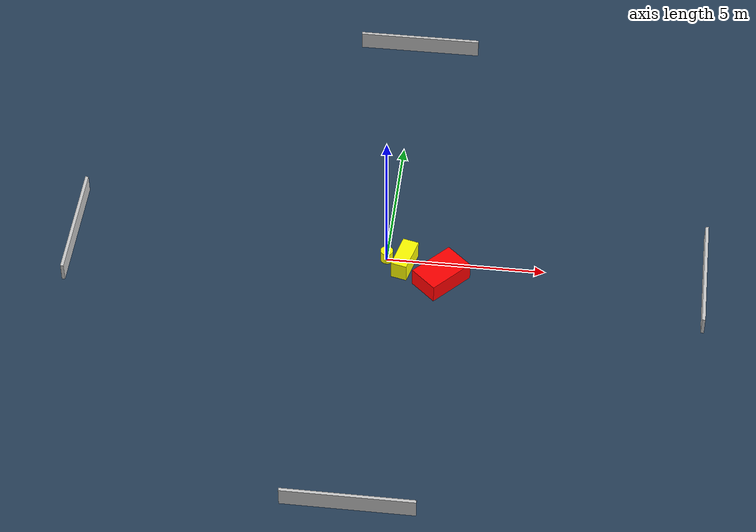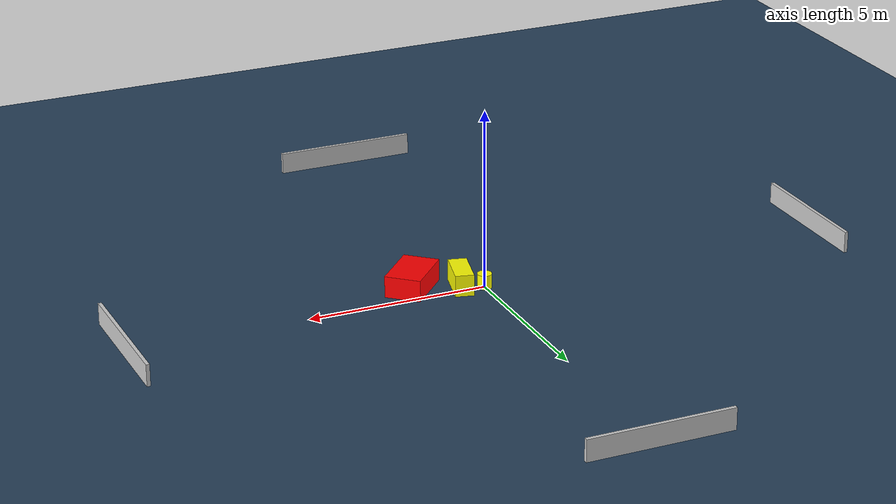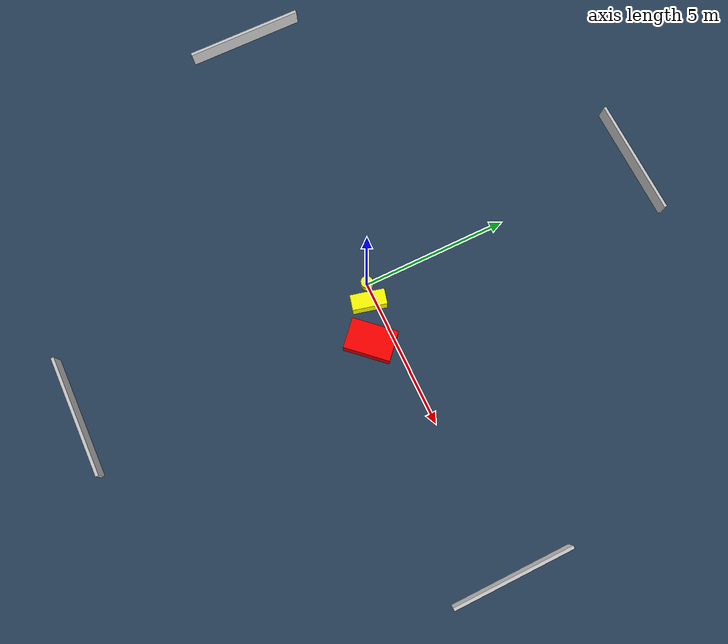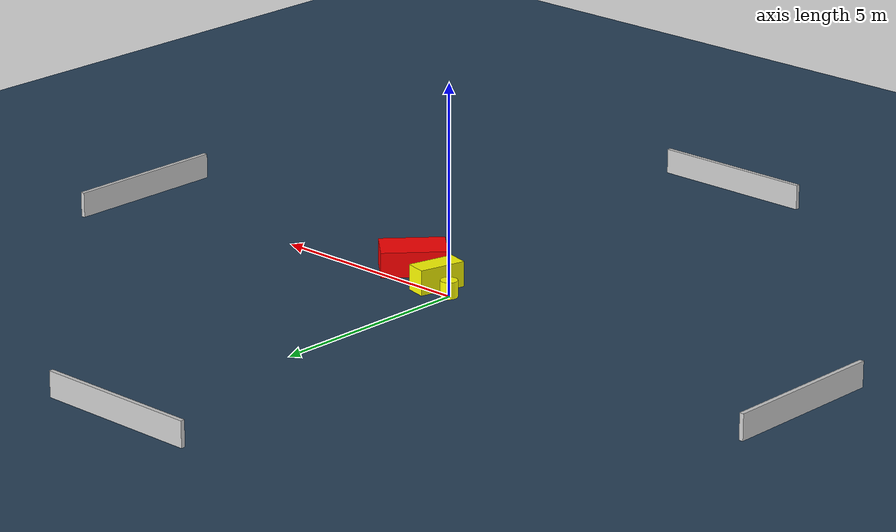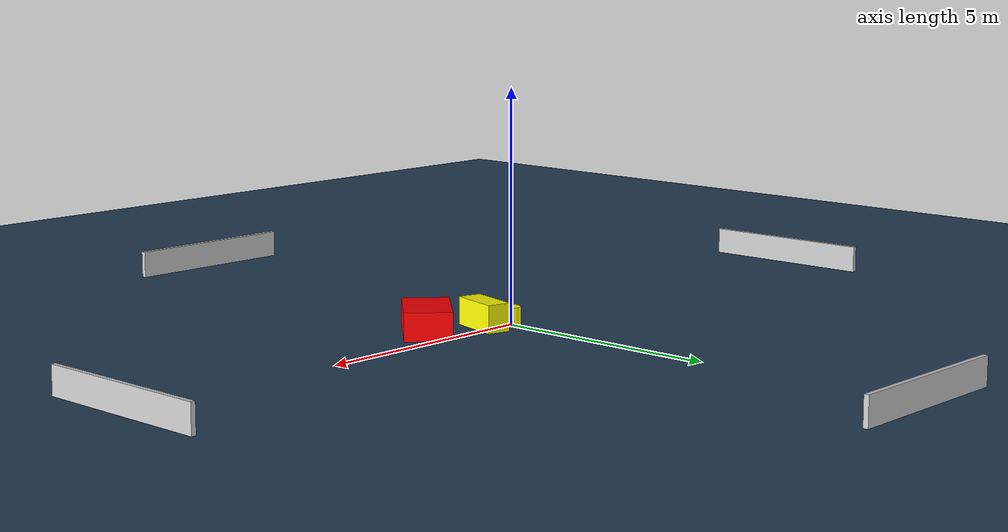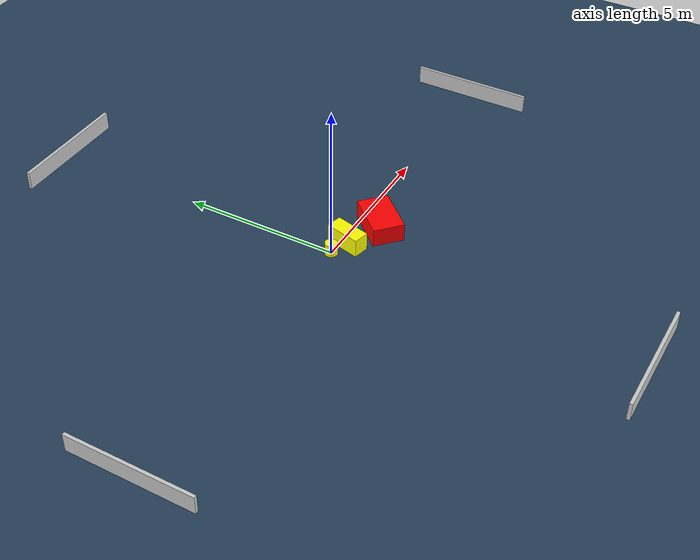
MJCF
<?xml version="1.0" ?>
<mujoco model="generated_environment">
  <option timestep="0.01" integrator="RK4" cone="elliptic"/>
  <default>
    <geom density="1"/>
  </default>
  <asset>
    <texture builtin="gradient" height="3072" name="skybox" rgb1="0.3 0.5 0.7" rgb2="0 0 0" type="skybox" width="512"/>
    <texture builtin="checker" height="300" name="groundplane" rgb1="0.2 0.3 0.4" rgb2="0.1 0.2 0.3" type="2d" width="300"/>
    <material name="groundplane" reflectance="0.2" texrepeat="5 5" texture="groundplane"/>
  </asset>
  <worldbody>
    <light dir="0 0 -1" directional="true" pos="0 0 1.5"/>
    <geom condim="3" friction="0.5 0.005 0.001" material="groundplane" name="floor" pos="0 0 0" size="0 0 0.05" type="plane"/>
    <body name="walls">
      <geom name="wall_1" condim="4" pos="-10.0 0.0 0.3" rgba="0.800000011920929 0.800000011920929 0.800000011920929 1.0" size="0.05 2.0 0.3" type="box"/>
      <geom name="wall_2" condim="4" pos="10.0 0.0 0.3" rgba="0.800000011920929 0.800000011920929 0.800000011920929 1.0" size="0.05 2.0 0.3" type="box"/>
      <geom name="wall_3" condim="4" pos="0.0 -10.0 0.3" rgba="0.800000011920929 0.800000011920929 0.800000011920929 1.0" size="2.0 0.05 0.3" type="box"/>
      <geom name="wall_4" condim="4" pos="0.0 10.0 0.3" rgba="0.800000011920929 0.800000011920929 0.800000011920929 1.0" size="2.0 0.05 0.3" type="box"/>
    </body>
    <body name="robot">
      <joint name="joint_x" type="slide" pos="0 0 0" axis="1 0 0"/>
      <joint name="joint_y" type="slide" pos="0 0 0" axis="0 1 0"/>
      <geom name="robot" type="cylinder" pos="0.0 0.0 0.2" size="0.2 0.2 0.0" mass="5.0" friction="1.0 0.005 0.0001" condim="4" rgba="1.0 1.0 0.0 1.0"/>
    </body>
    <body name="obstacle_1_movable">
      <geom name="obstacle_1_movable" condim="4" pos="0.5916745269367307 -0.22295002634132688 0.3" euler="0 0 76.14037972268898" friction="0.0 0.005 0.001" rgba="1.0 1.0 0.0 1.0" size="0.5690264330406036 0.2553894743092894 0.3" type="box" mass="0.1"/>
      <joint type="free"/>
    </body>
    <body name="obstacle_2_static">
      <geom name="obstacle_2_static" condim="4" pos="1.7920502734289363 -0.7176754571504943 0.3" euler="0 0 137.450582703424" friction="0.0 0.005 0.001" rgba="1.0 0.0 0.0 1.0" size="0.5007477224246086 0.7676046730866066 0.3" type="box"/>
    </body>
  </worldbody>
  <actuator>
    <motor name="actuator_x" joint="joint_x" gear="1" ctrlrange="-1 1"/>
    <motor name="actuator_y" joint="joint_y" gear="1" ctrlrange="-1 1"/>
  </actuator>
</mujoco>
